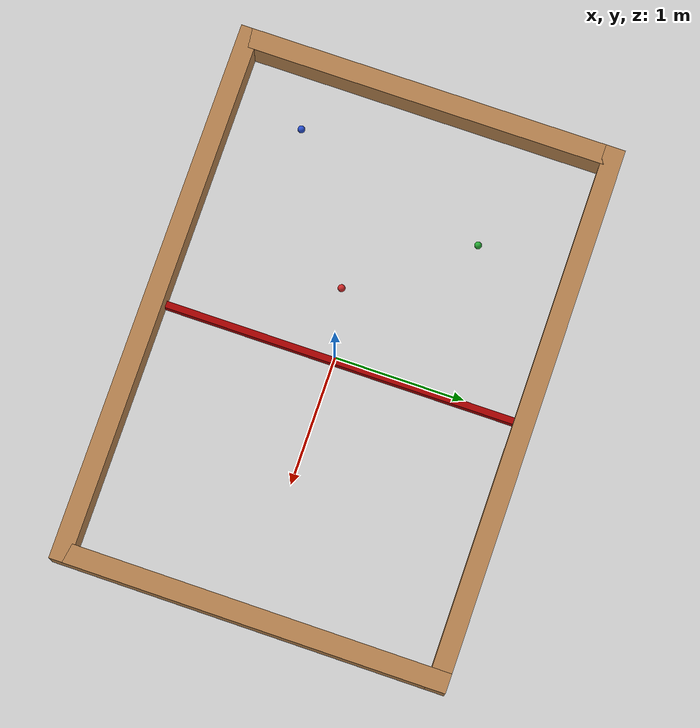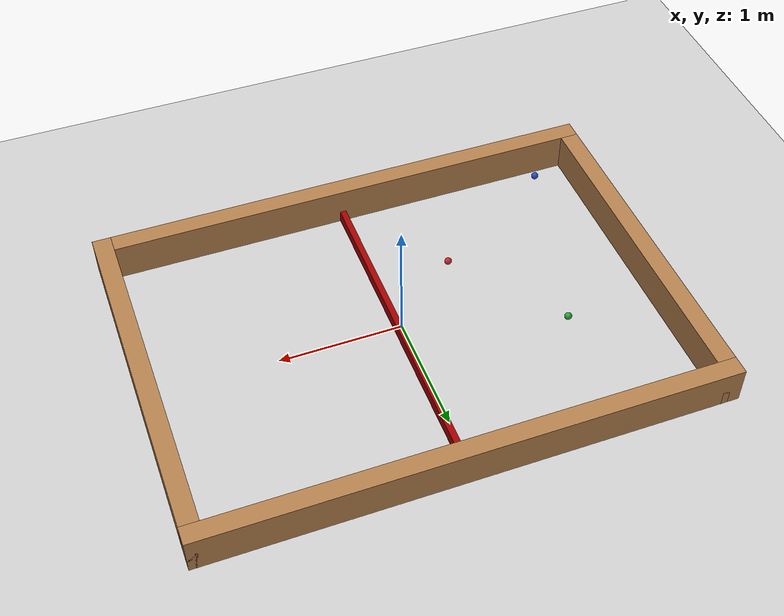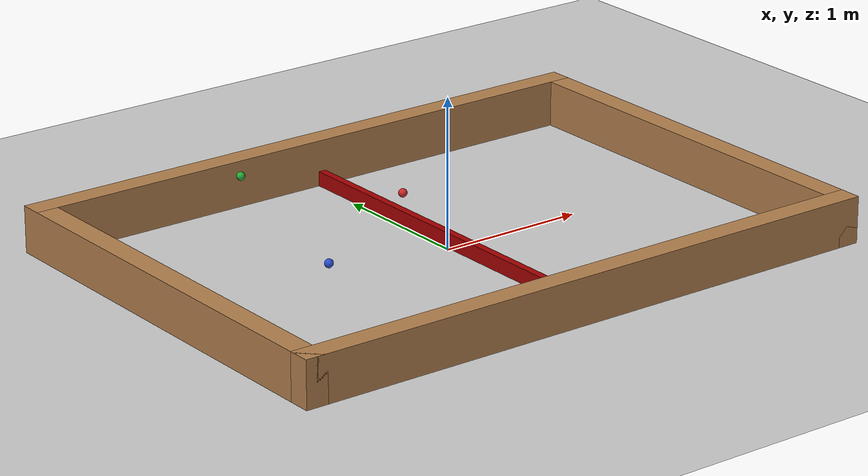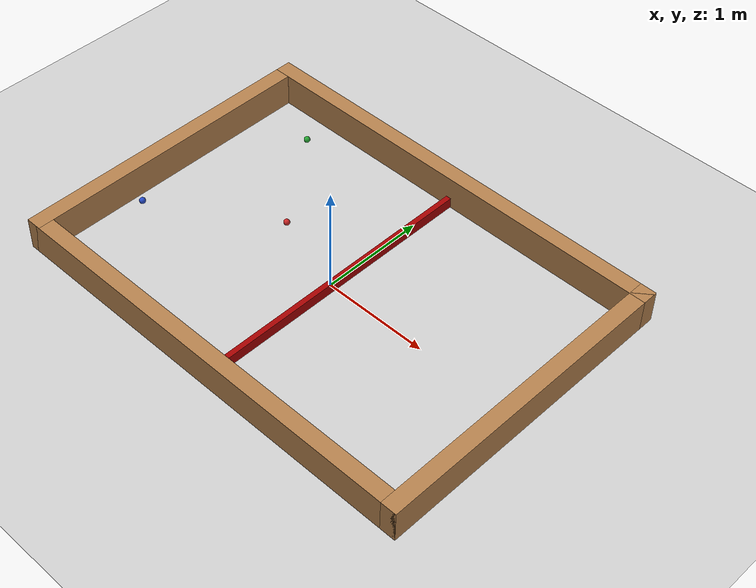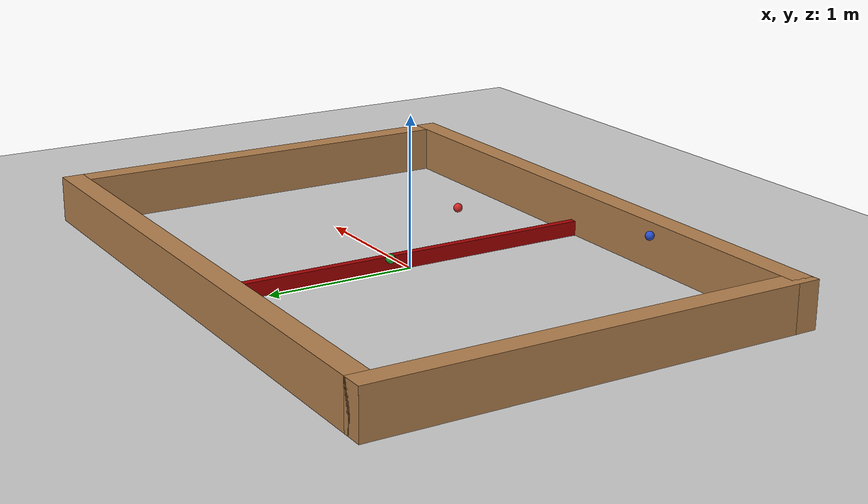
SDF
<sdf version="1.7">
 <world name="default">
  <light name="sun" type="directional">
   <pose>0 0 10 0 -0 0</pose>
   <diffuse>0.8 0.8 0.8 1</diffuse>
   <specular>0.2 0.2 0.2 1</specular>
   <attenuation>
    <range>1000</range>
    <constant>0.9</constant>
    <linear>0.01</linear>
    <quadratic>0.001</quadratic>
   </attenuation>
   <direction>-0.5 0.1 -0.9</direction>
   <spot><inner_angle>0</inner_angle><outer_angle>0</outer_angle><falloff>0</falloff></spot>
  </light>
  <model name="ground_plane">
   <static>1</static>
   <link name="link">
    <collision name="collision">
     <geometry><plane><normal>0 0 1</normal><size>100 100</size></plane></geometry>
     <surface>
      <contact><collide_bitmask>65535</collide_bitmask></contact>
      <friction><ode><mu>200</mu><mu2>100</mu2></ode></friction>
     </surface>
    </collision>
    <visual name="visual">
     <cast_shadows>0</cast_shadows>
     <geometry><plane><normal>0 0 1</normal><size>100 100</size></plane></geometry>
     <material>
      <script><uri>file://media/materials/scripts/gazebo.material</uri><name>Gazebo/Grey</name></script>
     </material>
    </visual>
   </link>
  </model>
  <gravity>0 0 -5</gravity>
  <magnetic_field>6e-06 2.3e-05 -4.2e-05</magnetic_field>
  <atmosphere type="adiabatic"/>
  <physics type="ode">
   <max_step_size>0.001</max_step_size>
   <real_time_factor>1</real_time_factor>
   <real_time_update_rate>1000</real_time_update_rate>
  </physics>
  <scene><ambient>0.4 0.4 0.4 1</ambient><background>0.7 0.7 0.7 1</background><shadows>1</shadows></scene>
  <spherical_coordinates>
   <surface_model>EARTH_WGS84</surface_model>
   <latitude_deg>0</latitude_deg>
   <longitude_deg>0</longitude_deg>
   <elevation>0</elevation>
   <heading_deg>0</heading_deg>
  </spherical_coordinates>
  <model name="Final_track">
   <pose>-0.003064 0.044556 0 0 -0 0</pose>
   <link name="Wall_0">
    <collision name="Wall_0_Collision">
     <geometry><box><size>4.2 0.15 0.31</size></box></geometry>
     <pose>0 0 0.155 0 -0 0</pose>
    </collision>
    <visual name="Wall_0_Visual">
     <pose>0 0 0.155 0 -0 0</pose>
     <geometry><box><size>4.2 0.15 0.31</size></box></geometry>
     <material>
      <script><uri>file://media/materials/scripts/gazebo.material</uri><name>Gazebo/Wood</name></script>
      <ambient>1 1 1 1</ambient>
     </material>
     <meta><layer>0</layer></meta>
    </visual>
    <pose>0 -1.425 0 0 -0 0</pose>
   </link>
   <link name="Wall_12">
    <collision name="Wall_12_Collision">
     <geometry><box><size>2.9 0.05 0.1</size></box></geometry>
     <pose>0 0 0.05 0 -0 0</pose>
    </collision>
    <visual name="Wall_12_Visual">
     <pose>0 0 0.05 0 -0 0</pose>
     <geometry><box><size>2.9 0.05 0.1</size></box></geometry>
     <material>
      <script><uri>file://media/materials/scripts/gazebo.material</uri><name>Gazebo/Grey</name></script>
      <ambient>0.643137 0 0 1</ambient>
     </material>
     <meta><layer>0</layer></meta>
    </visual>
    <pose>0.045 0 0 0 -0 1.5708</pose>
   </link>
   <link name="Wall_3">
    <collision name="Wall_3_Collision">
     <geometry><box><size>3 0.15 0.31</size></box></geometry>
     <pose>0 0 0.155 0 -0 0</pose>
    </collision>
    <visual name="Wall_3_Visual">
     <pose>0 0 0.155 0 -0 0</pose>
     <geometry><box><size>3 0.15 0.31</size></box></geometry>
     <material>
      <script><uri>file://media/materials/scripts/gazebo.material</uri><name>Gazebo/Wood</name></script>
      <ambient>1 1 1 1</ambient>
     </material>
     <meta><layer>0</layer></meta>
    </visual>
    <pose>2.025 0 0 0 -0 1.5708</pose>
   </link>
   <link name="Wall_5">
    <collision name="Wall_5_Collision">
     <geometry><box><size>3 0.15 0.31</size></box></geometry>
     <pose>0 0 0.155 0 -0 0</pose>
    </collision>
    <visual name="Wall_5_Visual">
     <pose>0 0 0.155 0 -0 0</pose>
     <geometry><box><size>3 0.15 0.31</size></box></geometry>
     <material>
      <script><uri>file://media/materials/scripts/gazebo.material</uri><name>Gazebo/Wood</name></script>
      <ambient>1 1 1 1</ambient>
     </material>
     <meta><layer>0</layer></meta>
    </visual>
    <pose>-2.025 0 0 0 -0 1.5708</pose>
   </link>
   <link name="Wall_6">
    <collision name="Wall_6_Collision">
     <geometry><box><size>4.2 0.15 0.31</size></box></geometry>
     <pose>0 0 0.155 0 -0 0</pose>
    </collision>
    <visual name="Wall_6_Visual">
     <pose>0 0 0.155 0 -0 0</pose>
     <geometry><box><size>4.2 0.15 0.31</size></box></geometry>
     <material>
      <script><uri>file://media/materials/scripts/gazebo.material</uri><name>Gazebo/Wood</name></script>
      <ambient>1 1 1 1</ambient>
     </material>
     <meta><layer>0</layer></meta>
    </visual>
    <pose>0 1.425 0 0 -0 0</pose>
   </link>
   <static>1</static>
  </model>
  <model name="unit_sphere">
   <pose>-1.03206 0.743019 0.5 0 -0 0</pose>
   <link name="link">
    <inertial>
     <mass>0.005</mass>
     <inertia><ixx>0.1</ixx><ixy>0</ixy><ixz>0</ixz><iyy>0.1</iyy><iyz>0</iyz><izz>0.1</izz></inertia>
    </inertial>
    <collision name="collision"><geometry><sphere><radius>0.0275</radius></sphere></geometry></collision>
    <visual name="visual">
     <geometry><sphere><radius>0.0275</radius></sphere></geometry>
     <material>
      <script><name>Gazebo/Green</name><uri>file://media/materials/scripts/gazebo.material</uri></script>
     </material>
    </visual>
   </link>
  </model>
  <model name="unit_sphere_0">
   <pose>-0.412779 -0.091657 0.5 0 -0 0</pose>
   <link name="link">
    <inertial>
     <mass>0.005</mass>
     <inertia><ixx>0.1</ixx><ixy>0</ixy><ixz>0</ixz><iyy>0.1</iyy><iyz>0</iyz><izz>0.1</izz></inertia>
    </inertial>
    <collision name="collision"><geometry><sphere><radius>0.0275</radius></sphere></geometry></collision>
    <visual name="visual">
     <geometry><sphere><radius>0.0275</radius></sphere></geometry>
     <material>
      <script><name>Gazebo/Red</name><uri>file://media/materials/scripts/gazebo.material</uri></script>
     </material>
    </visual>
   </link>
  </model>
  <model name="unit_sphere_1">
   <pose>-1.43862 -0.751646 0.5 0 -0 0</pose>
   <link name="link">
    <inertial>
     <mass>0.005</mass>
     <inertia><ixx>0.1</ixx><ixy>0</ixy><ixz>0</ixz><iyy>0.1</iyy><iyz>0</iyz><izz>0.1</izz></inertia>
    </inertial>
    <collision name="collision"><geometry><sphere><radius>0.0275</radius></sphere></geometry></collision>
    <visual name="visual">
     <geometry><sphere><radius>0.0275</radius></sphere></geometry>
     <material>
      <script><name>Gazebo/Blue</name><uri>file://media/materials/scripts/gazebo.material</uri></script>
     </material>
    </visual>
   </link>
  </model>
 </world>
</sdf>
